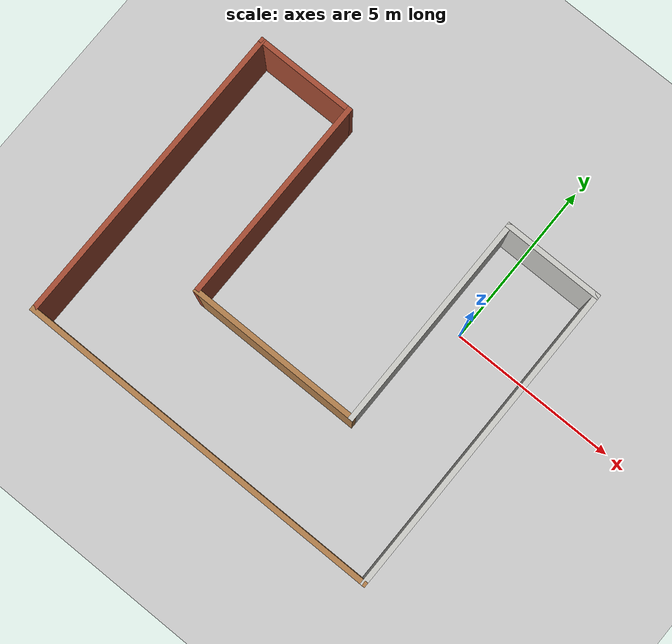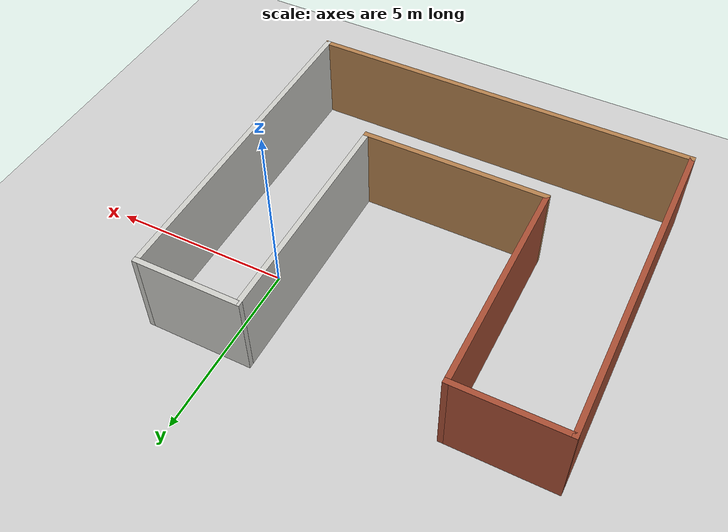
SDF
<sdf version="1.6">
 <world name="default">
  <light name="sun" type="directional">
   <pose>0 0 15 0 -0 0</pose>
   <diffuse>1 1 1 1</diffuse>
   <specular>0.1 0.1 0.1 1</specular>
   <attenuation>
    <range>1000</range>
    <constant>0.9</constant>
    <linear>0.01</linear>
    <quadratic>0.001</quadratic>
   </attenuation>
   <direction>-0.5 0.5 -1</direction>
  </light>
  <model name="ground_plane">
   <static>1</static>
   <link name="link">
    <collision name="collision">
     <geometry><plane><normal>0 0 1</normal><size>100 100</size></plane></geometry>
     <surface><friction><ode><mu>100</mu><mu2>50</mu2></ode></friction></surface>
    </collision>
    <visual name="visual">
     <transparency>1</transparency>
     <cast_shadows>0</cast_shadows>
     <geometry><plane><normal>0 0 1</normal><size>100 100</size></plane></geometry>
     <material>
      <script><uri>file://media/materials/scripts/gazebo.material</uri><name>Gazebo/Grey</name></script>
     </material>
    </visual>
   </link>
  </model>
  <gravity>0 0 -9.8</gravity>
  <magnetic_field>6e-06 2.3e-05 -4.2e-05</magnetic_field>
  <atmosphere type="adiabatic"/>
  <physics name="default_physics" default="0" type="ode">
   <max_step_size>0.001</max_step_size>
   <real_time_factor>1</real_time_factor>
   <real_time_update_rate>1000</real_time_update_rate>
  </physics>
  <scene><ambient>0.4 0.4 0.4 1</ambient><background>0.7 0.7 0.7 1</background><shadows>1</shadows></scene>
  <spherical_coordinates>
   <surface_model>EARTH_WGS84</surface_model>
   <latitude_deg>0</latitude_deg>
   <longitude_deg>0</longitude_deg>
   <elevation>0</elevation>
   <heading_deg>0</heading_deg>
  </spherical_coordinates>
  <model name="HomeServiceCorridor">
   <pose>-3.31951 -2.00018 0 0 -0 0</pose>
   <link name="Wall_1">
    <collision name="Wall_1_Collision">
     <geometry><box><size>9.25 0.15 2.5</size></box></geometry>
     <pose>0 0 1.25 0 -0 0</pose>
    </collision>
    <visual name="Wall_1_Visual">
     <pose>0 0 1.25 0 -0 0</pose>
     <geometry><box><size>9.25 0.15 2.5</size></box></geometry>
     <material>
      <script><uri>file://media/materials/scripts/gazebo.material</uri><name>Gazebo/Bricks</name></script>
      <ambient>1 1 1 1</ambient>
     </material>
    </visual>
    <pose>-5.425 -0.125 0 0 0 -1.5708</pose>
   </link>
   <link name="Wall_2">
    <collision name="Wall_2_Collision">
     <geometry><box><size>11 0.15 2.5</size></box></geometry>
     <pose>0 0 1.25 0 -0 0</pose>
    </collision>
    <visual name="Wall_2_Visual">
     <pose>0 0 1.25 0 -0 0</pose>
     <geometry><box><size>11 0.15 2.5</size></box></geometry>
     <material>
      <script><uri>file://media/materials/scripts/gazebo.material</uri><name>Gazebo/Wood</name></script>
      <ambient>1 1 1 1</ambient>
     </material>
    </visual>
    <pose>0 -4.675 0 0 -0 0</pose>
   </link>
   <link name="Wall_3">
    <collision name="Wall_3_Collision">
     <geometry><box><size>9.5 0.15 2.5</size></box></geometry>
     <pose>0 0 1.25 0 -0 0</pose>
    </collision>
    <visual name="Wall_3_Visual">
     <pose>0 0 1.25 0 -0 0</pose>
     <geometry><box><size>9.5 0.15 2.5</size></box></geometry>
     <material>
      <script><uri>file://media/materials/scripts/gazebo.material</uri><name>Gazebo/CeilingTiled</name></script>
      <ambient>1 1 1 1</ambient>
     </material>
    </visual>
    <pose>5.425 0 0 0 -0 1.5708</pose>
   </link>
   <link name="Wall_4">
    <collision name="Wall_4_Collision">
     <geometry><box><size>3 0.15 2.5</size></box></geometry>
     <pose>0 0 1.25 0 -0 0</pose>
    </collision>
    <visual name="Wall_4_Visual">
     <pose>0 0 1.25 0 -0 0</pose>
     <geometry><box><size>3 0.15 2.5</size></box></geometry>
     <material>
      <script><uri>file://media/materials/scripts/gazebo.material</uri><name>Gazebo/CeilingTiled</name></script>
      <ambient>1 1 1 1</ambient>
     </material>
    </visual>
    <pose>4 4.675 0 0 -0 3.14159</pose>
   </link>
   <link name="Wall_5">
    <collision name="Wall_5_Collision">
     <geometry><box><size>6.5 0.15 2.5</size></box></geometry>
     <pose>0 0 1.25 0 -0 0</pose>
    </collision>
    <visual name="Wall_5_Visual">
     <pose>0 0 1.25 0 -0 0</pose>
     <geometry><box><size>6.5 0.15 2.5</size></box></geometry>
     <material>
      <script><uri>file://media/materials/scripts/gazebo.material</uri><name>Gazebo/CeilingTiled</name></script>
      <ambient>1 1 1 1</ambient>
     </material>
    </visual>
    <pose>2.575 1.5 0 0 0 -1.5708</pose>
   </link>
   <link name="Wall_6">
    <collision name="Wall_6_Collision">
     <geometry><box><size>5.25 0.15 2.5</size></box></geometry>
     <pose>0 0 1.25 0 -0 0</pose>
    </collision>
    <visual name="Wall_6_Visual">
     <pose>0 0 1.25 0 -0 0</pose>
     <geometry><box><size>5.25 0.15 2.5</size></box></geometry>
     <material>
      <script><uri>file://media/materials/scripts/gazebo.material</uri><name>Gazebo/Wood</name></script>
      <ambient>1 1 1 1</ambient>
     </material>
    </visual>
    <pose>0.025 -1.675 0 0 -0 3.14159</pose>
   </link>
   <link name="Wall_7">
    <collision name="Wall_7_Collision">
     <geometry><box><size>6.25 0.15 2.5</size></box></geometry>
     <pose>0 0 1.25 0 -0 0</pose>
    </collision>
    <visual name="Wall_7_Visual">
     <pose>0 0 1.25 0 -0 0</pose>
     <geometry><box><size>6.25 0.15 2.5</size></box></geometry>
     <material>
      <script><uri>file://media/materials/scripts/gazebo.material</uri><name>Gazebo/Bricks</name></script>
      <ambient>1 1 1 1</ambient>
     </material>
    </visual>
    <pose>-2.525 1.375 0 0 -0 1.5708</pose>
   </link>
   <link name="Wall_8">
    <collision name="Wall_8_Collision">
     <geometry><box><size>3.05 0.15 2.5</size></box></geometry>
     <pose>0 0 1.25 0 -0 0</pose>
    </collision>
    <visual name="Wall_8_Visual">
     <pose>0 0 1.25 0 -0 0</pose>
     <geometry><box><size>3.05 0.15 2.5</size></box></geometry>
     <material>
      <script><uri>file://media/materials/scripts/gazebo.material</uri><name>Gazebo/Bricks</name></script>
      <ambient>1 1 1 1</ambient>
     </material>
    </visual>
    <pose>-3.975 4.425 0 0 -0 3.14159</pose>
   </link>
   <static>1</static>
  </model>
 </world>
</sdf>
